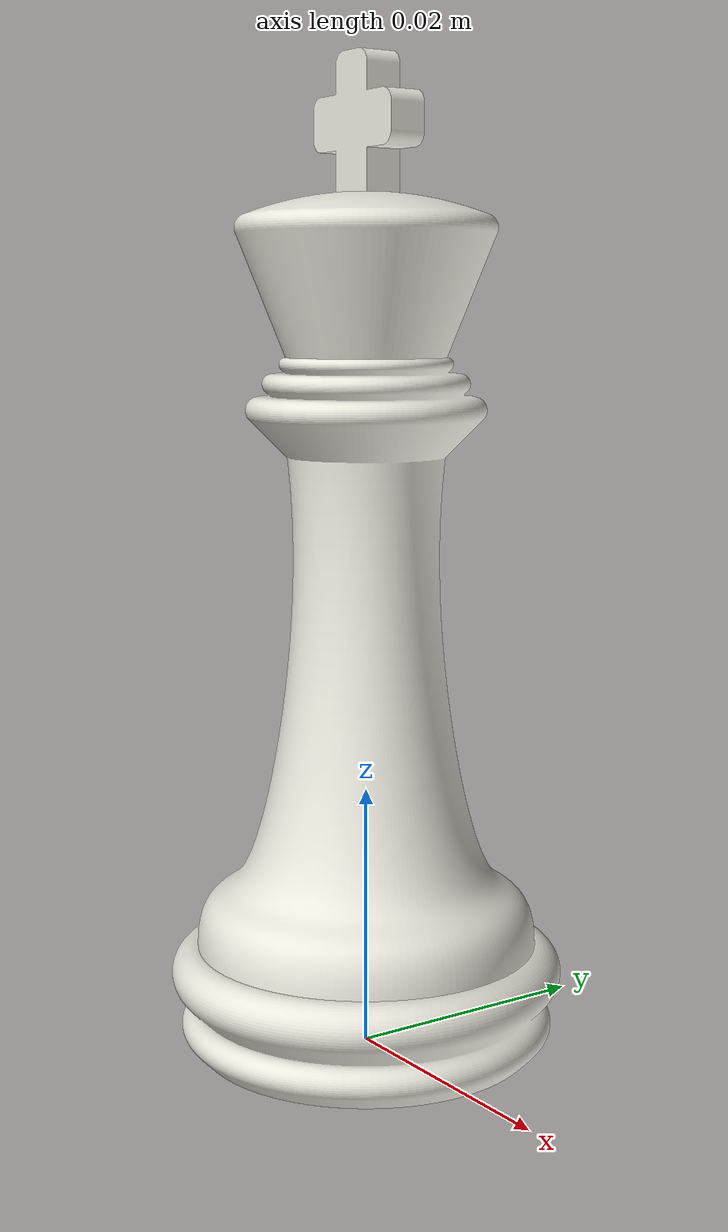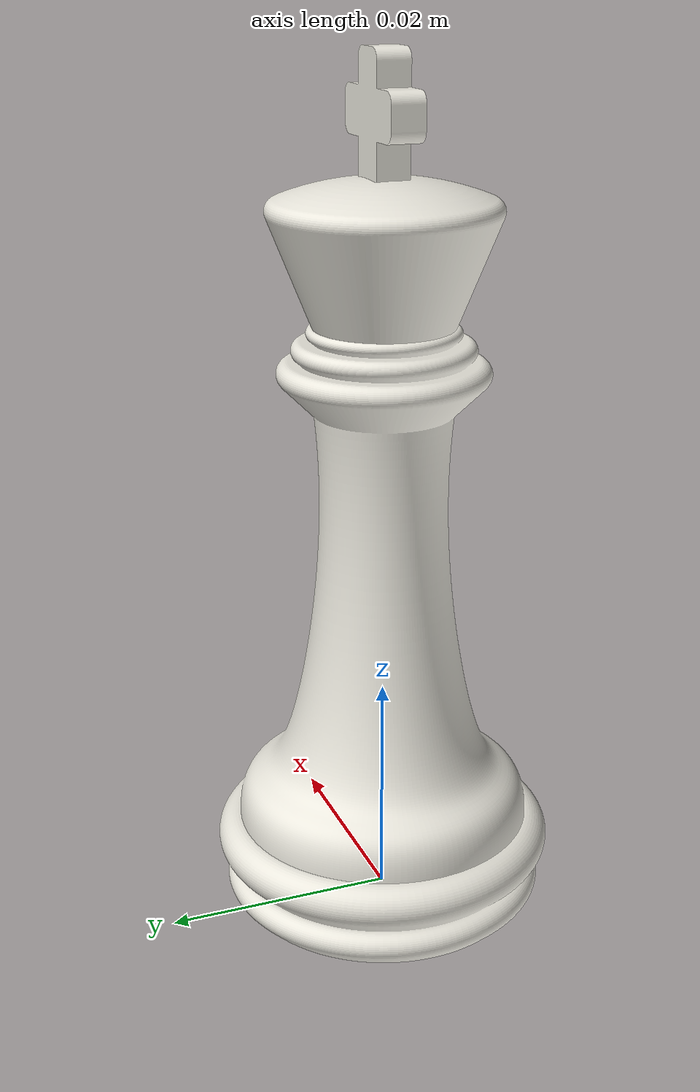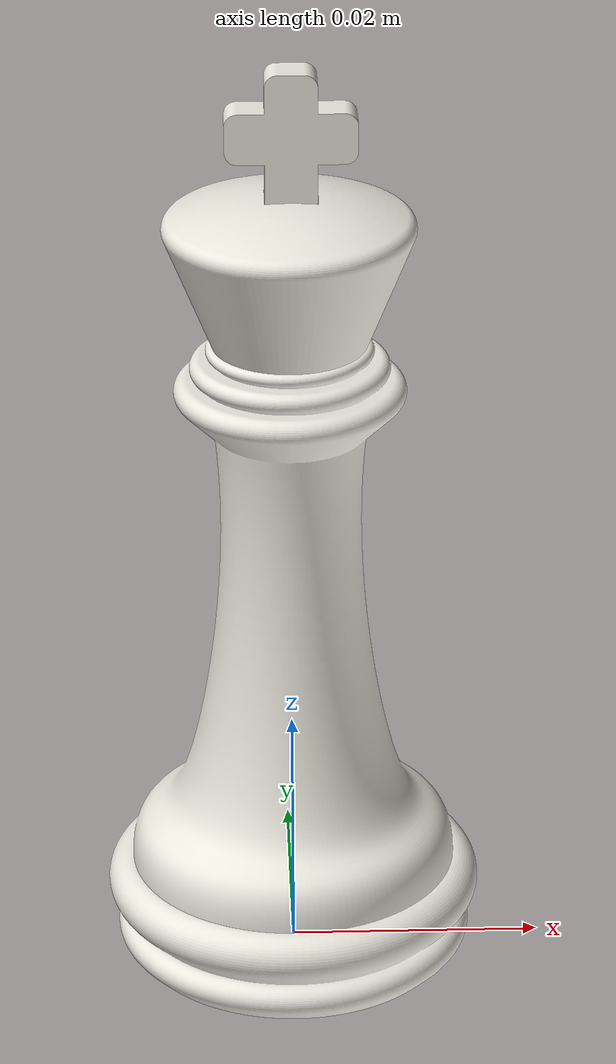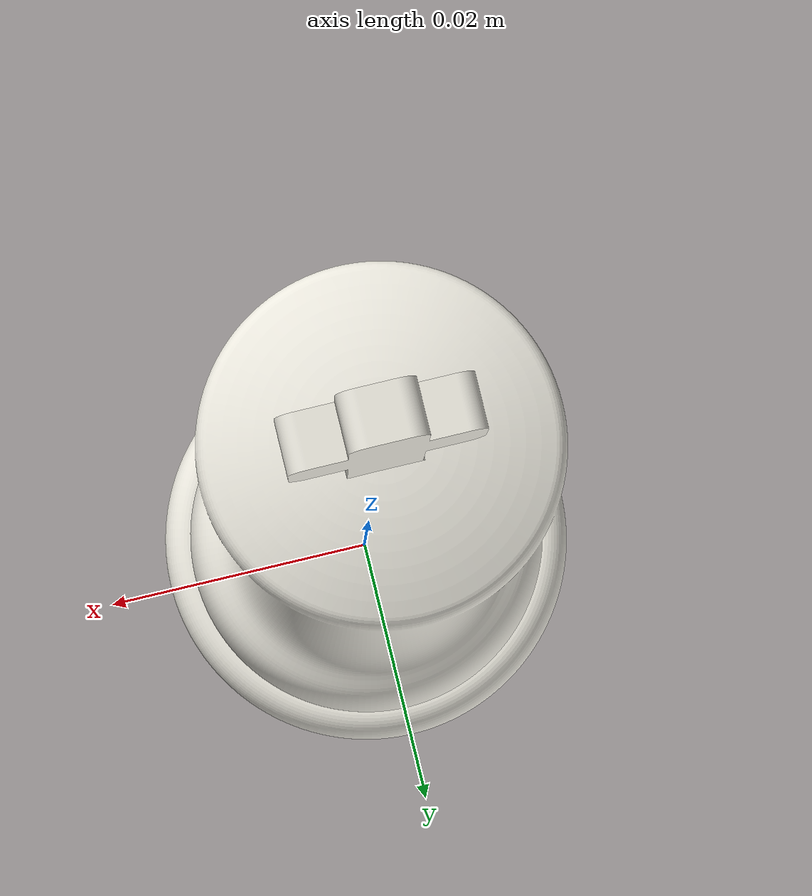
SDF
<?xml version="1.0"?>
<sdf version="1.9">
  <model name="white_king">
    <static>false</static>
    <link name="piece">
      <inertial>
        <mass>0.065</mass>
        <inertia>
          <ixx>0.000022</ixx>
          <iyy>0.000022</iyy>
          <izz>0.000013</izz>
        </inertia>
      </inertial>
      <collision name="collision">
        <pose>0 0 0.0375 0 0 0</pose>
        <geometry>
          <cylinder>
            <radius>0.016</radius>
            <length>0.075</length>
          </cylinder>
        </geometry>
      </collision>
      <visual name="body">
        <geometry>
          <mesh>
            <uri>model://chess_piece_meshes/meshes/king-body.stl</uri>
            <scale>0.001 0.001 0.001</scale>
          </mesh>
        </geometry>
        <material>
          <ambient>0.93 0.92 0.88 1</ambient>
          <diffuse>0.93 0.92 0.88 1</diffuse>
          <specular>0.20 0.20 0.20 1</specular>
        </material>
      </visual>
      <visual name="cross">
        <geometry>
          <mesh>
            <uri>model://chess_piece_meshes/meshes/king-cross.stl</uri>
            <scale>0.001 0.001 0.001</scale>
          </mesh>
        </geometry>
        <material>
          <ambient>0.93 0.92 0.88 1</ambient>
          <diffuse>0.93 0.92 0.88 1</diffuse>
          <specular>0.20 0.20 0.20 1</specular>
        </material>
      </visual>
    </link>
  </model>
</sdf>
